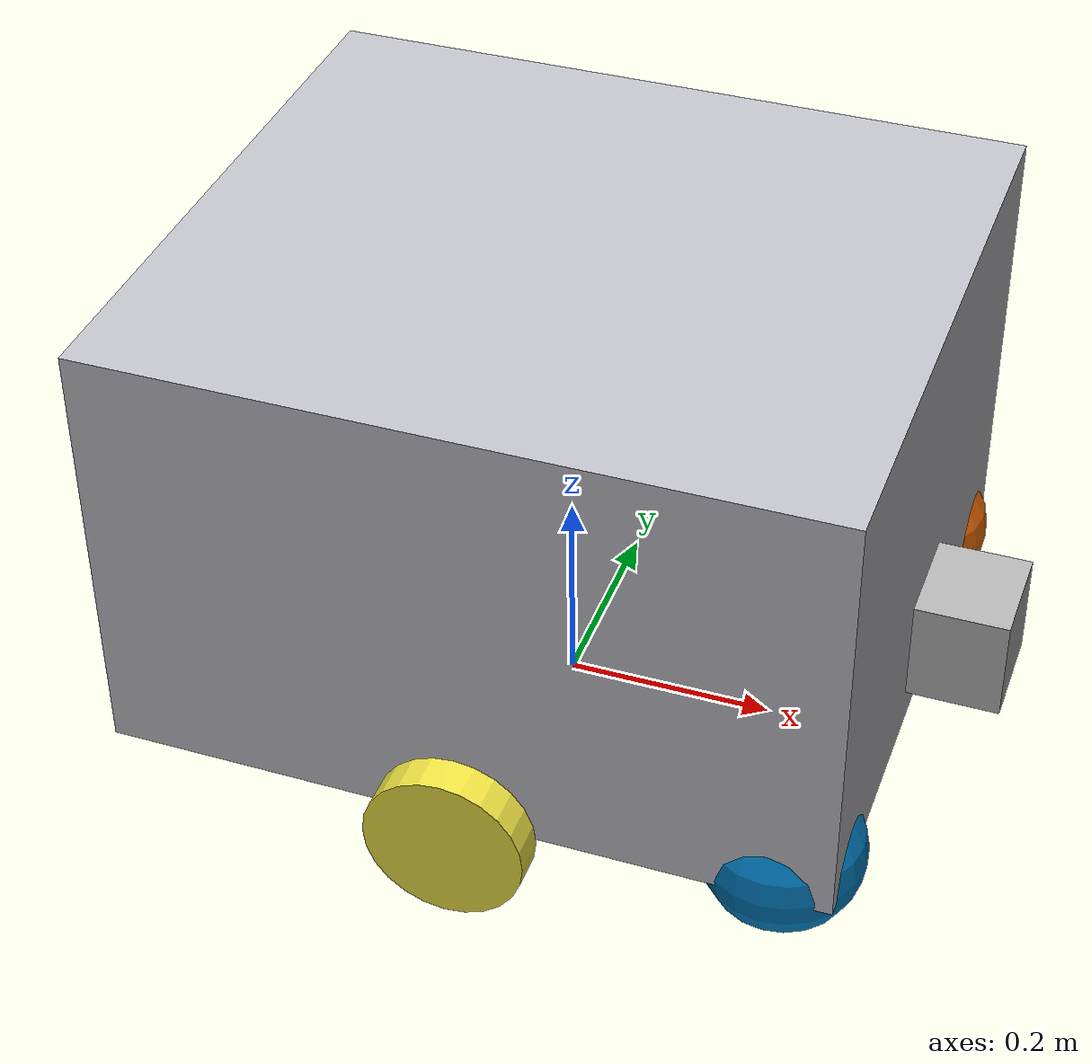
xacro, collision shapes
<?xml version="1.0"?>
<robot name="neobotix_base" xmlns:xacro="http://www.ros.org/wiki/xacro">

  <xacro:arg name="platform_configuration" default="neo-aal" />

  <!-- Includes -->
  <xacro:include filename="$(find neo_description)/urdf/common/util_defs.xacro" />
  <xacro:include filename="$(find neo_description)/urdf/neobotix_mp655.urdf.xacro"/>
  <xacro:include filename="$(find neo_description)/urdf/common/sick_s300_laser.urdf.xacro" />

  <!-- Load parameters -->
  <xacro:include filename="$(find neo_description)/calibration/$(arg platform_configuration)_cal.xacro"/>

  <!-- Spawn the base -->
  <xacro:neobotix_base name="base"/>

  <!-- Spawn the laser scanners -->
  <xacro:sick_s300_laser_v0 name="laserfront" parent="base" ros_topic="laser_front/scan" update_rate="5" min_angle="${laser_front_min_angle}" max_angle="${laser_front_max_angle}" >
   <origin xyz="${laser_front_x} ${laser_front_y} ${laser_front_z}"
           rpy="${laser_front_roll} ${laser_front_pitch} ${laser_front_yaw}"/>
  </xacro:sick_s300_laser_v0>

  <xacro:sick_s300_laser_v0 name="laserback" parent="base" ros_topic="laser_back/scan" update_rate="5" min_angle="${laser_back_min_angle}" max_angle="${laser_back_max_angle}" >
   <origin xyz="${laser_back_x} ${laser_back_y} ${laser_back_z}"
           rpy="${laser_back_roll} ${laser_back_pitch} ${laser_back_yaw}"/>
  </xacro:sick_s300_laser_v0>

</robot>

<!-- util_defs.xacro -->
<robot xmlns:xacro="http://www.ros.org/wiki/xacro"
       xmlns:sensor="http://playerstage.sourceforge.net/gazebo/xmlschema/#sensor"
       xmlns:controller="http://playerstage.sourceforge.net/gazebo/xmlschema/#controller"
       xmlns:interface="http://playerstage.sourceforge.net/gazebo/xmlschema/#interface">

  <xacro:property name="M_PI" value="3.1415926535897931" />

  <!--
     Little helper macro to define the inertia matrix needed
     for links.
     -->
  <xacro:macro name="cuboid_inertia_def" params="width height length mass">
    <inertia ixx="${mass * (height * height + length * length) / 12}"
             iyy="${mass * (width * width + length * length) / 12}"
             izz="${mass * (width * width + height * height) / 12}"
             ixy="0" iyz="0" ixz="0"/>
  </xacro:macro>

  <!-- length is along the y-axis! -->
  <xacro:macro name="cylinder_inertia_def" params="radius length mass">
    <inertia ixx="${mass * (3 * radius * radius + length * length) / 12}"
             iyy="${mass * radius* radius / 2}"
             izz="${mass * (3 * radius * radius + length * length) / 12}"
             ixy="0" iyz="0" ixz="0"/>
  </xacro:macro>

</robot>

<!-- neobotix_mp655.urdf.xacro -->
<robot xmlns:xacro="http://www.ros.org/wiki/xacro">

  <!-- Included URDFs -->
  <xacro:include filename="$(find neo_description)/urdf/common/util_defs.xacro"/>
  <xacro:include filename="$(find neo_description)/urdf/common/materials.xml"/>

  <!-- Geometric properties of the platform and sensors -->
  <!-- Base -->
  <xacro:property name="base_size_x" value="0.735"/>
  <xacro:property name="base_size_y" value="0.717"/>
  <xacro:property name="base_size_z" value="0.411"/>
  <xacro:property name="base_offset_z" value="0.075"/>
  <xacro:property name="base_mass" value="170.0"/>
  <!--
     Place the center of mass somewhere below the center of the base
     because of the heavy batteries. Note: just a rough guess. Somebody
     has to measure and enter correct values.
     -->
  <xacro:property name="base_cg_x" value="0"/>
  <xacro:property name="base_cg_y" value="0"/>
  <xacro:property name="base_cg_z" value="0.15"/>

  <!-- Wheels -->
  <xacro:property name="wheel_offset_x" value="0"/>
  <xacro:property name="wheel_offset_y" value="0.3255"/>
  <xacro:property name="wheel_radius" value="0.075"/>
  <xacro:property name="wheel_width" value="0.035"/>
  <xacro:property name="wheel_mass" value="3.0"/>

  <!-- Macro to define a wheel. The origin is set to the connection point
       to the axis/base. Reflect is either -1 or one for left or right. -->
  <xacro:macro name="neo_mp655_wheel" params="suffix parent reflect *origin">
    <joint name="${suffix}_joint" type="continuous">
      <xacro:insert_block name="origin"/>
      <parent link="${parent}_link"/>
      <child link="${suffix}_link"/>
    </joint>

    <link name="${suffix}_link">
      <inertial>
        <mass value="${wheel_mass}"/>
        <origin xyz="0 0 0" rpy="0 0 0"/>
        <xacro:cylinder_inertia_def radius="${wheel_radius}" length="${wheel_width}" mass="${wheel_mass}"/>
      </inertial>

      <collision>
        <origin xyz="0 0 0" rpy="0 ${0.5 * reflect * M_PI} 0"/>
        <geometry>
          <cylinder radius="${1.00 * wheel_radius}" length="${wheel_width}"/>
        </geometry>
      </collision>
    </link>

    <gazebo reference="${suffix}_link">
      <material value="Gazebo/Black"/>
      <mu1>10.0</mu1>
      <mu2>10.0</mu2>
      <kp>500000.0</kp>
      <kd>10.0</kd>
      <minDepth>0.001</minDepth>
      <maxVel>0.1</maxVel>
      <fdir1>1 0 0</fdir1>
    </gazebo>

  </xacro:macro>

  <!-- Caster wheel -->
  <xacro:macro name="caster_wheel" params="suffix parent *origin">
    <joint name="${suffix}_joint" type="fixed">
      <xacro:insert_block name="origin"/>
      <parent link="${parent}_link"/>
      <child link="${suffix}_link"/>
    </joint>

    <link name="${suffix}_link">
      <inertial>
        <mass value="0.5"/>
        <origin xyz="0 0 0" rpy="0 0 0"/>
        <inertia ixx="0.001" ixy="0" ixz="0" iyy="0.001" iyz="0" izz="0.001" />
      </inertial>

      <collision>
        <origin xyz="0 0 0" rpy="0 0 0"/>
        <geometry>
          <sphere radius="${wheel_radius * 1.00}"/>
        </geometry>
      </collision>
    </link>

    <gazebo reference="${suffix}_link">
      <material value="Gazebo/Black"/>
      <mu1>0.01</mu1>
      <mu2>0.01</mu2>
      <kp>1000000.0</kp>
      <kd>100.0</kd>
      <minDepth>0.001</minDepth>      <!-- Minimum allowable depth before contact correction impulse is applied -->
      <maxVel>1.0</maxVel>
    </gazebo>
  </xacro:macro>

  <!-- Macro to define a ultrasonic sensor, implemented as a fixed link -->
  <xacro:macro name="ultrasonic_sensor" params="parent type location *origin">
    <joint name="$ultrasonic_sensor_${type}-${location}_joint" type="fixed">
      <xacro:insert_block name="origin"/>
      <parent link="${parent}_link"/>
      <child link="ultrasonic_sensor_${type}-${location}_link"/>
    </joint>
    <link name="ultrasonic_sensor_${type}-${location}_link"></link>
  </xacro:macro>

  <!-- Macro to define the platform base -->
  <xacro:macro name="neobotix_base" params="name">
    <link name="${name}_link">
      <inertial>
        <mass value="${base_mass}" />
        <origin xyz="${base_cg_x} ${base_cg_y} ${base_cg_z}" rpy="0 0 0"/>
        <!-- The inertia matrix of the base is wrong. The specification is with
             respect to the origin of the base. It's currently not worth it for me
             to do some exact calculations -->
        <xacro:cuboid_inertia_def length="${0.25 * base_size_x}" width="${base_size_y}" height="${0.25 * base_size_z}" mass="${base_mass}"/>
      </inertial>

      <visual>
        <origin xyz="0 0 ${base_offset_z}" rpy="0 0 0"/>
        <geometry>
          <mesh filename="package://neo_description/meshes/neo_mp655/neobotix_mp655.dae"/>
        </geometry>
        <material name="Silver"/>
      </visual>

      <collision>
        <origin xyz="0 0 ${base_offset_z + 0.5 * base_size_z}" rpy="0 0 0"/>
        <geometry>
          <box size="0.68 0.6 0.42"/>
        </geometry>
      </collision>
    </link>

    <gazebo reference="${name}_link">
      <material value="kimp.material"/>
    </gazebo>

    <!-- base_footprint is a fictitious link(frame) that is on the ground
         right below base_link origin, navigation stack depends on this frame -->
    <link name="${name}_footprint"/>

    <joint name="${name}_footprint_joint" type="fixed">
      <origin xyz="0 0 0" rpy="0 0 0" />
      <child link="${name}_link" />
      <parent link="${name}_footprint"/>
    </joint>

    <!-- Define wheels inside the base macro -->
    <!-- Left wheel -->
    <xacro:neo_mp655_wheel parent="${name}" suffix="left_wheel" reflect="-1">
      <origin xyz="${wheel_offset_x} ${wheel_offset_y} ${wheel_radius}" rpy="0 0 ${M_PI/2}"/>
    </xacro:neo_mp655_wheel>

    <!-- Right wheel -->
    <xacro:neo_mp655_wheel parent="${name}" suffix="right_wheel" reflect="1">
      <origin xyz="${wheel_offset_x} ${-wheel_offset_y} ${wheel_radius}" rpy="0 0 ${M_PI/2}"/>
    </xacro:neo_mp655_wheel>

    <!-- Caster wheels -->
    <xacro:caster_wheel parent="${name}" suffix="front_right_caster">
      <origin xyz="0.28 -0.24 ${wheel_radius}" rpy="0 0 0"/>
    </xacro:caster_wheel>

    <xacro:caster_wheel parent="${name}" suffix="front_left_caster">
      <origin xyz="0.28 0.24 ${wheel_radius}" rpy="0 0 0"/>
    </xacro:caster_wheel>

    <xacro:caster_wheel parent="${name}" suffix="rear_caster">
      <origin xyz="-0.28 0 ${wheel_radius}" rpy="0 0 0"/>
    </xacro:caster_wheel>

    <!-- Five ultrasonic sensors -->

    <gazebo>
      <plugin name="neobotix_controller" filename="libgazebo_ros_diff_drive.so">
        <commandTopic>cmd_vel</commandTopic>
        <odometryTopic>odom</odometryTopic>
        <odometryFrame>odom</odometryFrame>
        <odometrySource>world</odometrySource>
        <publishOdomTF>true</publishOdomTF>
        <robotBaseFrame>base_footprint</robotBaseFrame>        <!-- base_link -->
        <publishWheelTF>false</publishWheelTF>
        <publishTf>true</publishTf>
        <publishWheelJointState>true</publishWheelJointState>
        <legacyMode>false</legacyMode>
        <updateRate>100</updateRate>
        <leftJoint>left_wheel_joint</leftJoint>
        <rightJoint>right_wheel_joint</rightJoint>
        <wheelSeparation>0.651</wheelSeparation>
        <wheelDiameter>0.15</wheelDiameter>
        <wheelAcceleration>1</wheelAcceleration>
        <wheelTorque>5</wheelTorque>
        <rosDebugLevel>na</rosDebugLevel>
      </plugin>
    </gazebo>

    <!-- CONTROLLERS (as seen in erratic_base.xacro -->

  </xacro:macro>

</robot>

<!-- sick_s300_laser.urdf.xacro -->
<robot xmlns:xacro="http://www.ros.org/wiki/xacro">

  <xacro:include filename="$(find neo_description)/urdf/common/sick_s300_laser.gazebo.xacro" />

  <xacro:macro name="sick_s300_laser_v0" params="name parent *origin ros_topic update_rate min_angle max_angle">
    <joint name="${name}_joint" type="fixed">
      <axis xyz="0 1 0" />
      <xacro:insert_block name="origin" />
      <parent link="${parent}_link"/>
      <child link="${name}_link"/>
    </joint>
    <link name="${name}_link" type="laser">
      <inertial>
        <mass value="0.001" />
        <origin xyz="0 0 0" rpy="0 0 0" />
        <inertia ixx="0.0001" ixy="0" ixz="0" iyy="0.000001" iyz="0" izz="0.0001" />
      </inertial>
      <visual>
        <origin xyz="0 0 0" rpy="0 0 0" />
        <geometry>
          <mesh filename="package://neo_description/meshes/neo_mp655/sick_s300.dae"/>
        </geometry>
      </visual>
      <collision>
        <origin xyz="0 0 0" rpy="0 0 0" />
        <geometry>
          <box size=".1 .1 .1" />
        </geometry>
      </collision>
    </link>
    <!-- gazebo extensions -->
    <xacro:sick_s300_laser_gazebo_v0 name="${name}" ros_topic="${ros_topic}" update_rate="${update_rate}" min_angle="${min_angle}" max_angle="${max_angle}" />
  </xacro:macro>
</robot>

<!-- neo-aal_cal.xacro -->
<robot xmlns:xacro="http://www.ros.org/wiki/xacro">

  <!-- Transformation from Neobotix base to LWR base -->
    <xacro:property name="cal_base_to_lwr_arm_xyz" value="0.236 0.190 0.895" /> <!-- was 0.831-->
  <xacro:property name="cal_base_to_lwr_arm_rpy" value="0 0 0" />

  <!-- Transformation from LWR base to Kinect (faily accurate) -->
  <xacro:property name="kinect_parent_name" value="calib_lwr_arm_base_link"/>
  <xacro:property name="cal_kinect_x"       value="0.257"/>
  <xacro:property name="cal_kinect_y"       value="-0.064" />
  <xacro:property name="cal_kinect_z"       value="0.145" />
  <xacro:property name="cal_kinect_roll"    value="0" />
  <xacro:property name="cal_kinect_pitch"   value="0" />
  <xacro:property name="cal_kinect_yaw"     value="1.570796327" />

  <!-- Transformation from LWR endeffector to gripper connector plate -->
  <!-- schunk gripper -->
  <xacro:property name="cal_lwr_to_gripper_xyz" value="0 0 0" />
  <xacro:property name="cal_lwr_to_gripper_rpy" value="3.1415926 -1.570796327 0"  />

  <!-- Size of the chassis (just a box) -->
  <xacro:property name="chassis_size_x" value="0.65"/>
  <xacro:property name="chassis_size_y" value="0.58"/>
  <xacro:property name="chassis_size_z" value="0.42"/>

  <!-- Laser scanner parameters -->
  <xacro:property name="laser_front_x"      value="0.377"/>
  <xacro:property name="laser_front_y"      value="0.00"/>
  <xacro:property name="laser_front_z"      value="0.160"/>
  <xacro:property name="laser_front_roll"   value="0.00"/>
  <xacro:property name="laser_front_pitch"  value="0.00"/>
  <xacro:property name="laser_front_yaw"    value="0.00"/>
  <xacro:property name="laser_front_min_angle" value="-1.66"/> <!-- 95 degrees -->
  <xacro:property name="laser_front_max_angle" value="1.66"/>

  <xacro:property name="laser_back_x"       value="-0.377"/>
  <xacro:property name="laser_back_y"       value="0.00"/>
  <xacro:property name="laser_back_z"       value="0.160"/>
  <xacro:property name="laser_back_roll"    value="0.00"/>
  <xacro:property name="laser_back_pitch"   value="0.00"/>
  <xacro:property name="laser_back_yaw"     value="3.141592654"/>
  <xacro:property name="laser_back_min_angle" value="-2.35619449"/>
  <xacro:property name="laser_back_max_angle" value="2.35619449"/>

</robot>
